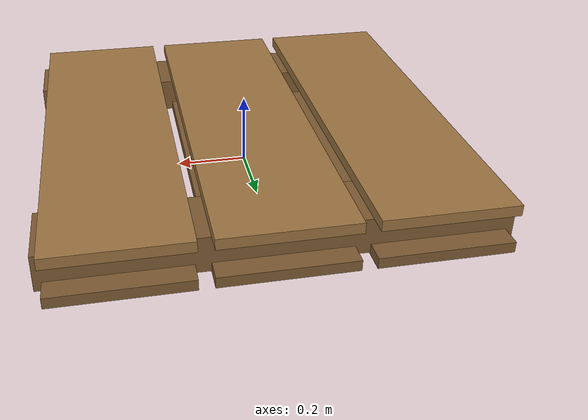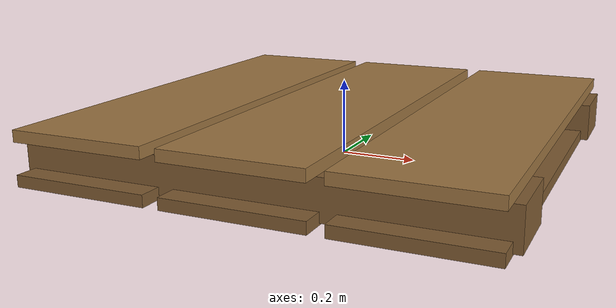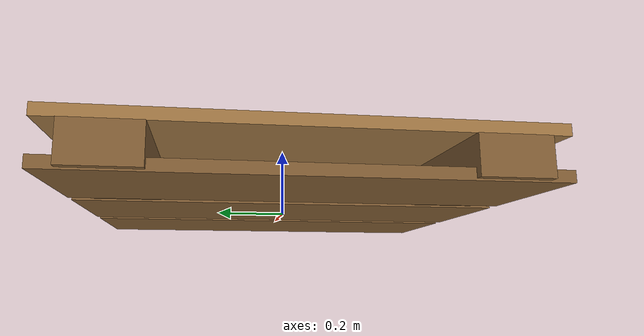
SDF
<?xml version="1.0" ?>
<sdf version="1.6">
<model name="pallet">
  <static>true</static>
  <link name="link">
    <collision name="footprint">
      <pose>0 0 0.07 0 0 0</pose>
      <geometry><box><size>1.2 1.2 0.14</size></box></geometry>
    </collision>
<visual name="top1">
<pose>-0.4 0 0.13 0 0 0</pose>
<geometry><box><size>0.36 1.2 0.03</size></box></geometry>
<material><ambient>0.35 0.26 0.15 1</ambient>
<diffuse>0.62 0.46 0.26 1</diffuse>
<specular>0.15 0.1 0.05 1</specular></material>
</visual>
<visual name="top2">
<pose>0.0 0 0.13 0 0 0</pose>
<geometry><box><size>0.36 1.2 0.03</size></box></geometry>
<material><ambient>0.35 0.26 0.15 1</ambient>
<diffuse>0.62 0.46 0.26 1</diffuse>
<specular>0.15 0.1 0.05 1</specular></material>
</visual>
<visual name="top3">
<pose>0.4 0 0.13 0 0 0</pose>
<geometry><box><size>0.36 1.2 0.03</size></box></geometry>
<material><ambient>0.35 0.26 0.15 1</ambient>
<diffuse>0.62 0.46 0.26 1</diffuse>
<specular>0.15 0.1 0.05 1</specular></material>
</visual>
<visual name="stringer1">
<pose>0 -0.45 0.06 0 0 0</pose>
<geometry><box><size>1.2 0.18 0.1</size></box></geometry>
<material><ambient>0.28 0.2 0.11 1</ambient>
<diffuse>0.5 0.36 0.2 1</diffuse>
<specular>0.1 0.08 0.04 1</specular></material>
</visual>
<visual name="stringer2">
<pose>0 0.45 0.06 0 0 0</pose>
<geometry><box><size>1.2 0.18 0.1</size></box></geometry>
<material><ambient>0.28 0.2 0.11 1</ambient>
<diffuse>0.5 0.36 0.2 1</diffuse>
<specular>0.1 0.08 0.04 1</specular></material>
</visual>
<visual name="bottom1">
<pose>-0.4 0 0.02 0 0 0</pose>
<geometry><box><size>0.36 1.2 0.03</size></box></geometry>
<material><ambient>0.28 0.2 0.11 1</ambient>
<diffuse>0.5 0.36 0.2 1</diffuse>
<specular>0.1 0.08 0.04 1</specular></material>
</visual>
<visual name="bottom2">
<pose>0.0 0 0.02 0 0 0</pose>
<geometry><box><size>0.36 1.2 0.03</size></box></geometry>
<material><ambient>0.28 0.2 0.11 1</ambient>
<diffuse>0.5 0.36 0.2 1</diffuse>
<specular>0.1 0.08 0.04 1</specular></material>
</visual>
<visual name="bottom3">
<pose>0.4 0 0.02 0 0 0</pose>
<geometry><box><size>0.36 1.2 0.03</size></box></geometry>
<material><ambient>0.28 0.2 0.11 1</ambient>
<diffuse>0.5 0.36 0.2 1</diffuse>
<specular>0.1 0.08 0.04 1</specular></material>
</visual>
  </link>
</model>
</sdf>
